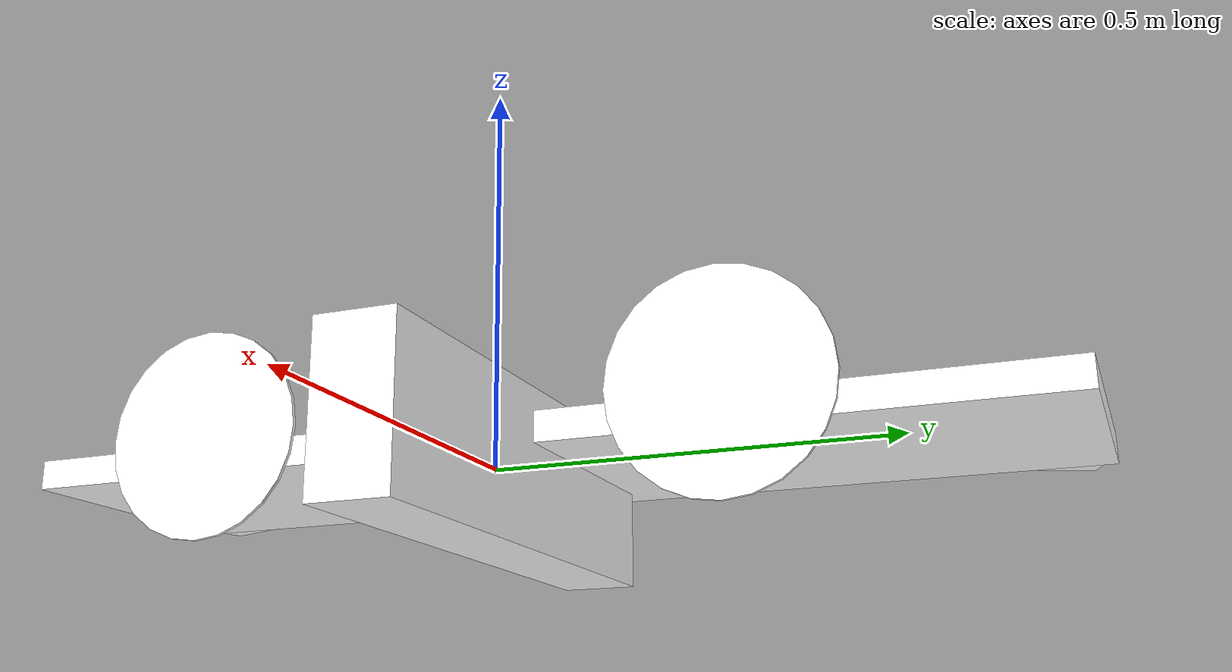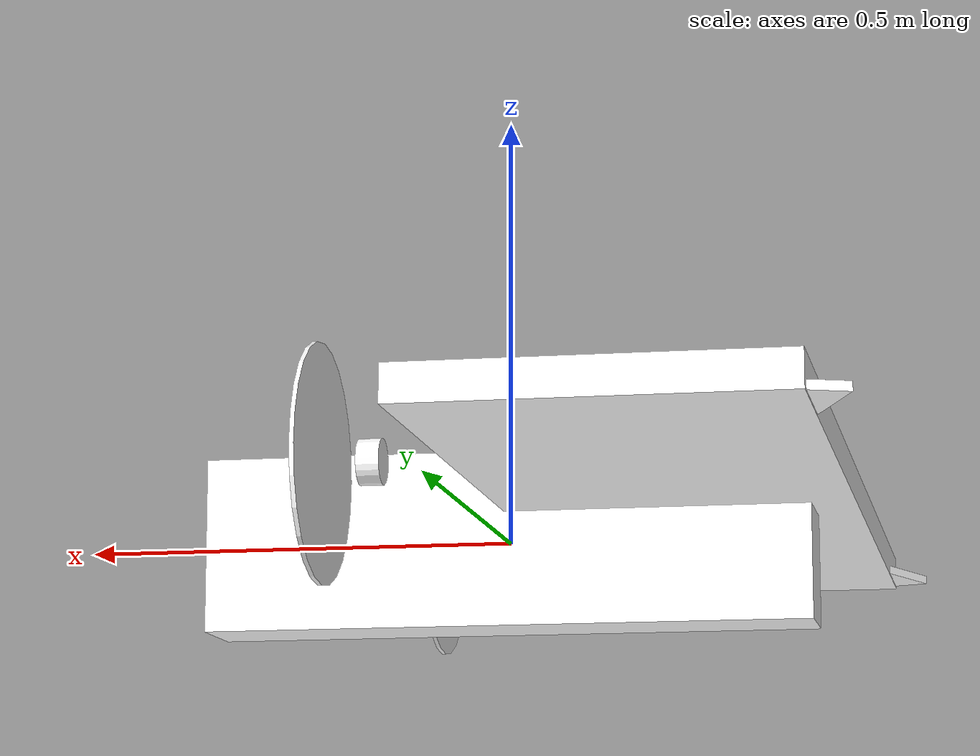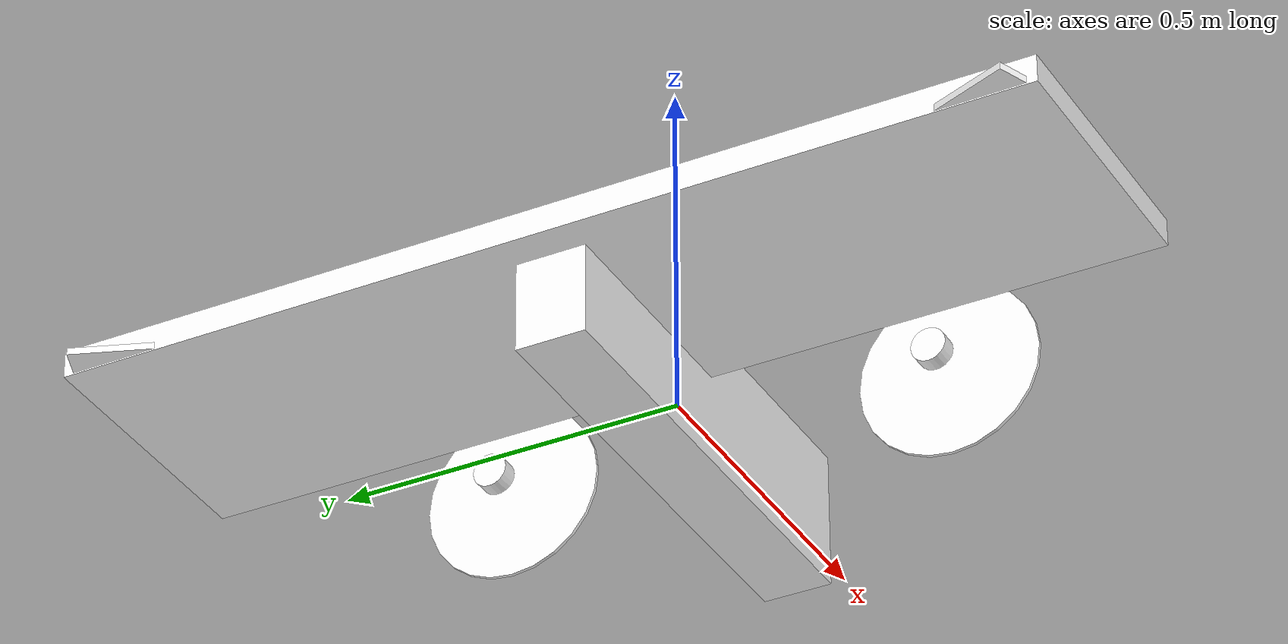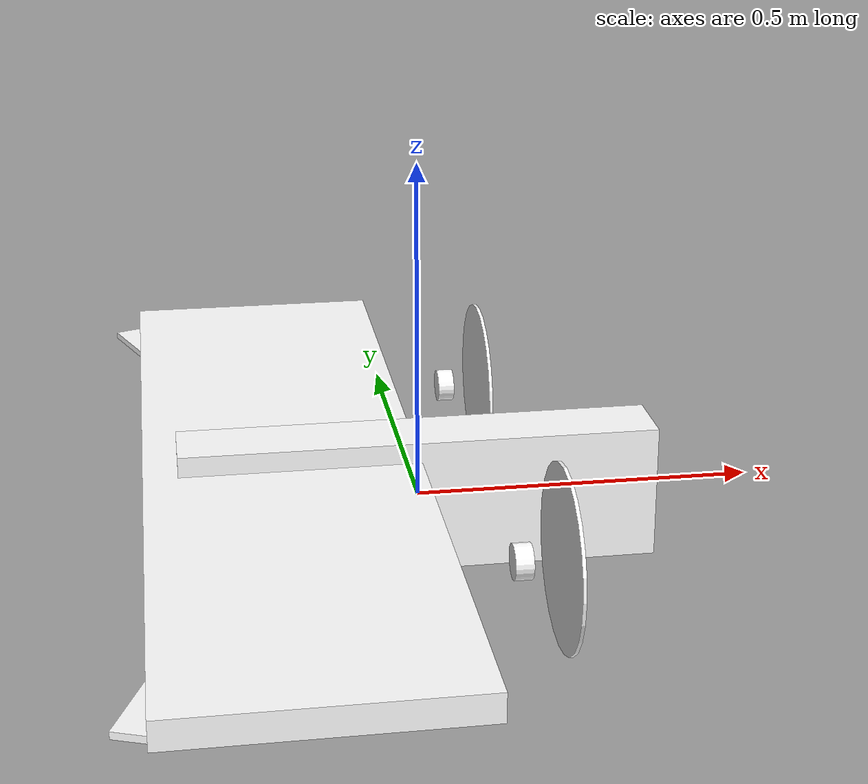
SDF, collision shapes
<sdf version='1.7'>
  <model name='skycat_tvbs'>
    <static>0</static>
    <self_collide>0</self_collide>

    <link name='base_link'>
      <inertial>
        <pose>0 0 0 0 0 0</pose>
        <mass>2.6</mass>
        <inertia>
          <ixx>0.010833333</ixx>
          <ixy>0</ixy>
          <ixz>0</ixz>
          <iyy>0.114833333</iyy>
          <iyz>0</iyz>
          <izz>0.108333333</izz>
        </inertia>
      </inertial>
      <collision name='fuselage_collision'>
        <pose>0 0 0 0 0 0</pose>
        <geometry>
          <box>
            <size>0.7 0.1 0.2</size>
          </box>
        </geometry>
      </collision>
      <collision name='wing_collision'>
        <pose>-0.20 0 0.05 0 0 0</pose>
        <geometry>
          <box>
            <size>0.4 1.40 0.04</size>
          </box>
        </geometry>
      </collision>
      <visual name='skycat_base'>
        <geometry>
          <mesh>
            <scale>1 1 1</scale>
            <uri>model://skycat_tvbs/meshes/skycat_base.dae</uri>
          </mesh>
        </geometry>
        <material>
          <ambient>1 1 1</ambient>
          <diffuse>1 1 1</diffuse>
          <specular>0.5 0.5 0.5</specular>
          <pbr>
            <metal>
              <albedo_map>model://skycat_tvbs/materials/textures/skycat.png</albedo_map>
              <roughness>0.5</roughness>
              <metalness>0.5</metalness>
            </metal>
          </pbr>
        </material>
      </visual>

      <!-- save for debugging use -->

    </link>

    <link name="elevon_left_link">
      <inertial>
        <pose>-0.30 0.37 0.037 0 0 0.366519</pose>
        <mass>0.1</mass>
        <inertia>
          <ixx>0.003713333</ixx>
          <ixy>0</ixy>
          <iyy>0.000104167</iyy>
          <ixz>0</ixz>
          <iyz>0</iyz>
          <izz>0.003650833</izz>
        </inertia>
      </inertial>
      <collision name="collision">
        <pose>-0.30 0.37 0.037 0 0 0.366519</pose>
        <geometry>
          <box>
            <size>0.05 0.66 0.01</size>
          </box>
        </geometry>
      </collision>
      <visual name='visual'>
        <geometry>
          <mesh>
            <scale>1 1 1</scale>
            <uri>model://skycat_tvbs/meshes/skycat_elevon_left.dae</uri>
          </mesh>
        </geometry>
        <material>
          <ambient>1 1 1</ambient>
          <diffuse>1 1 1</diffuse>
          <specular>0.5 0.5 0.5</specular>
          <pbr>
            <metal>
              <albedo_map>model://skycat_tvbs/materials/textures/skycat.png</albedo_map>
              <roughness>0.5</roughness>
              <metalness>0.5</metalness>
            </metal>
          </pbr>
        </material>
      </visual>
    </link>
    <joint name="elevon_left_joint" type="revolute">
      <pose relative_to='base_link'>-0.263 0.327 0.037 0 0 0.366519</pose>
      <parent>base_link</parent>
      <child>elevon_left_link</child>
      <axis>
        <xyz>0 1 0</xyz>
        <limit>
          <lower>-0.523599</lower>
          <upper>0.523599</upper>
        </limit>
        <dynamics>
          <damping>0.02</damping>
        </dynamics>
      </axis>
    </joint>

    <link name="elevon_right_link">
      <inertial>
        <pose>-0.30 -0.37 0.037 0 0 -0.366519</pose>
        <mass>0.1</mass>
        <inertia>
          <ixx>0.003713333</ixx>
          <ixy>0</ixy>
          <iyy>0.000104167</iyy>
          <ixz>0</ixz>
          <iyz>0</iyz>
          <izz>0.003650833</izz>
        </inertia>
      </inertial>
      <collision name="collision">
        <pose>-0.30 -0.37 0.037 0 0 -0.366519</pose>
        <geometry>
          <box>
            <size>0.05 0.66 0.01</size>
          </box>
        </geometry>
      </collision>
      <visual name='visual'>
        <geometry>
          <mesh>
            <scale>1 1 1</scale>
            <uri>model://skycat_tvbs/meshes/skycat_elevon_right.dae</uri>
          </mesh>
        </geometry>
        <material>
          <ambient>1 1 1</ambient>
          <diffuse>1 1 1</diffuse>
          <specular>0.5 0.5 0.5</specular>
          <pbr>
            <metal>
              <albedo_map>model://skycat_tvbs/materials/textures/skycat.png</albedo_map>
              <roughness>0.5</roughness>
              <metalness>0.5</metalness>
            </metal>
          </pbr>
        </material>
      </visual>
    </link>
    <joint name="elevon_right_joint" type="revolute">
      <pose relative_to='base_link'>-0.263 -0.327 0.037 0 0 -0.366519</pose>
      <parent>base_link</parent>
      <child>elevon_right_link</child>
      <axis>
        <xyz>0 1 0</xyz>
        <limit>
          <lower>-0.523599</lower>
          <upper>0.523599</upper>
        </limit>
        <dynamics>
          <damping>0.02</damping>
        </dynamics>
      </axis>
    </joint>

    <link name="tilt_left_link">
      <inertial>
        <pose>0.091 0.327 0.042 0 1.570796 0</pose>
        <mass>0.06</mass>
        <inertia>
          <ixx>0.0000125</ixx>
          <ixy>0</ixy>
          <ixz>0</ixz>
          <iyy>0.0000125</iyy>
          <iyz>0</iyz>
          <izz>0.00001875</izz>
        </inertia>
      </inertial>
      <collision name='collision'>
        <pose>0.091 0.327 0.042 0 1.570796 0</pose>
        <geometry>
          <cylinder>
            <radius>0.025</radius>
            <length>0.025</length>
          </cylinder>
        </geometry>
      </collision>
      <visual name='visual'>
        <geometry>
          <mesh>
            <scale>1 1 1</scale>
            <uri>model://skycat_tvbs/meshes/skycat_tilt_left.dae</uri>
          </mesh>
        </geometry>
        <material>
          <ambient>1 1 1</ambient>
          <diffuse>1 1 1</diffuse>
          <specular>0.3 0.3 0.3</specular>
          <pbr>
            <metal>
              <albedo_map>model://skycat_tvbs/materials/textures/skycat.png</albedo_map>
              <roughness>0.5</roughness>
              <metalness>0.9</metalness>
            </metal>
          </pbr>
        </material>
      </visual>
    </link>
    <joint name="tilt_left_joint" type="revolute">
      <pose relative_to='base_link'>0.091 0.327 0.042 0 0 0</pose>
      <parent>base_link</parent>
      <child>tilt_left_link</child>
      <axis>
        <xyz>0 1 0</xyz>
        <limit>
          <lower>-1.047198</lower>
          <upper>1.047198</upper>
        </limit>
        <dynamics>
          <damping>0.02</damping>
        </dynamics>
      </axis>
    </joint>

    <link name="tilt_right_link">
      <inertial>
        <pose>0.091 -0.327 0.042 0 1.570796 0</pose>
        <mass>0.06</mass>
        <inertia>
          <ixx>0.0000125</ixx>
          <ixy>0</ixy>
          <ixz>0</ixz>
          <iyy>0.0000125</iyy>
          <iyz>0</iyz>
          <izz>0.00001875</izz>
        </inertia>
      </inertial>
      <collision name='collision'>
        <pose>0.091 -0.327 0.042 0 1.570796 0</pose>
        <geometry>
          <cylinder>
            <radius>0.025</radius>
            <length>0.025</length>
          </cylinder>
        </geometry>
      </collision>
      <visual name='visual'>
        <geometry>
          <mesh>
            <scale>1 1 1</scale>
            <uri>model://skycat_tvbs/meshes/skycat_tilt_right.dae</uri>
          </mesh>
        </geometry>
        <material>
          <ambient>1 1 1</ambient>
          <diffuse>1 1 1</diffuse>
          <specular>0.3 0.3 0.3</specular>
          <pbr>
            <metal>
              <albedo_map>model://skycat_tvbs/materials/textures/skycat.png</albedo_map>
              <roughness>0.5</roughness>
              <metalness>0.9</metalness>
            </metal>
          </pbr>
        </material>
      </visual>
    </link>
    <joint name="tilt_right_joint" type="revolute">
      <pose relative_to='base_link'>0.091 -0.327 0.042 0 0 0</pose>
      <parent>base_link</parent>
      <child>tilt_right_link</child>
      <axis>
        <xyz>0 1 0</xyz>
        <limit>
          <lower>-1.047198</lower>
          <upper>1.047198</upper>
        </limit>
        <dynamics>
          <damping>0.02</damping>
        </dynamics>
      </axis>
    </joint>

    <link name="motor_left_link">
      <pose relative_to='motor_left_joint'>0 0 0.03 0 0 0</pose>
      <inertial>
        <pose>0 0 0 0 0 0</pose>
        <mass>0.025</mass>
        <inertia>
          <ixx>9.75e-06</ixx>
          <ixy>0</ixy>
          <ixz>0</ixz>
          <iyy>0.000166704</iyy>
          <iyz>0</iyz>
          <izz>0.000167604</izz>
        </inertia>
      </inertial>
      <collision name='collision'>
        <pose>0 0 0.025 0 0 0</pose>
        <geometry>
          <cylinder>
            <length>0.005</length>
            <radius>0.13</radius>
          </cylinder>
        </geometry>
      </collision>
      <visual name='prop_visual'>
        <pose>0 0 0.025 0 0 0</pose>
        <geometry>
          <mesh>
            <scale>1 1 1</scale>
            <uri>model://skycat_tvbs/meshes/iris_prop_cw.dae</uri>
          </mesh>
        </geometry>
        <material>
          <diffuse>1.0 1.0 1.0</diffuse>
          <specular>1.0 1.0 1.0</specular>
          <pbr>
            <metal>
              <albedo_map>model://skycat_tvbs/materials/textures/metal_graphite/metal_graphite_basecolor.jpg</albedo_map>
              <metalness_map>model://skycat_tvbs/materials/textures/metal_graphite/metal_graphite_metallic.jpg</metalness_map>
              <normal_map>model://skycat_tvbs/materials/textures/metal_graphite/metal_graphite_normal.jpg</normal_map>
              <roughness_map>model://skycat_tvbs/materials/textures/metal_graphite/metal_graphite_roughness.jpg</roughness_map>
              <roughness>1.0</roughness>
              <metalness>1.0</metalness>
            </metal>
          </pbr>
        </material>
      </visual>
    </link>
    <joint name="motor_left_joint" type="revolute">
      <pose relative_to='tilt_left_joint'>0 0 0 0 1.570796 0</pose>
      <parent>tilt_left_link</parent>
      <child>motor_left_link</child>
      <axis>
        <xyz>0 0 1</xyz>
        <limit>
          <lower>-1e16</lower>
          <upper>1e16</upper>
        </limit>
        <dynamics>
          <damping>0.002</damping>
        </dynamics>
        <use_parent_model_frame>1</use_parent_model_frame>
      </axis>
    </joint>

    <link name="motor_right_link">
      <pose relative_to='motor_right_joint'>0 0 0.03 0 0 0</pose>
      <inertial>
        <pose>0 0 0 0 0 0</pose>
        <mass>0.025</mass>
        <inertia>
          <ixx>9.75e-06</ixx>
          <ixy>0</ixy>
          <ixz>0</ixz>
          <iyy>0.000166704</iyy>
          <iyz>0</iyz>
          <izz>0.000167604</izz>
        </inertia>
      </inertial>
      <collision name='collision'>
        <pose>0 0 0.025 0 0 0</pose>
        <geometry>
          <cylinder>
            <length>0.005</length>
            <radius>0.13</radius>
          </cylinder>
        </geometry>
      </collision>
      <visual name='prop_visual'>
        <pose>0 0 0.025 0 0 0</pose>
        <geometry>
          <mesh>
            <scale>1 1 1</scale>
            <uri>model://skycat_tvbs/meshes/iris_prop_ccw.dae</uri>
          </mesh>
        </geometry>
        <material>
          <diffuse>1.0 1.0 1.0</diffuse>
          <specular>1.0 1.0 1.0</specular>
          <pbr>
            <metal>
              <albedo_map>model://skycat_tvbs/materials/textures/metal_graphite/metal_graphite_basecolor.jpg</albedo_map>
              <metalness_map>model://skycat_tvbs/materials/textures/metal_graphite/metal_graphite_metallic.jpg</metalness_map>
              <normal_map>model://skycat_tvbs/materials/textures/metal_graphite/metal_graphite_normal.jpg</normal_map>
              <roughness_map>model://skycat_tvbs/materials/textures/metal_graphite/metal_graphite_roughness.jpg</roughness_map>
              <roughness>1.0</roughness>
              <metalness>1.0</metalness>
            </metal>
          </pbr>
        </material>
      </visual>
    </link>
    <joint name="motor_right_joint" type="revolute">
      <pose relative_to='tilt_right_joint'>0 0 0 0 1.570796 0</pose>
      <parent>tilt_right_link</parent>
      <child>motor_right_link</child>
      <axis>
        <xyz>0 0 1</xyz>
        <limit>
          <lower>-1e16</lower>
          <upper>1e16</upper>
        </limit>
        <dynamics>
          <damping>0.002</damping>
        </dynamics>
      </axis>
    </joint>

    <!-- sensors -->
    <link name='imu_link'>
      <inertial>
        <pose>0 0 0 0 0 0</pose>
        <mass>0.15</mass>
        <inertia>
          <ixx>0.00002</ixx>
          <ixy>0</ixy>
          <ixz>0</ixz>
          <iyy>0.00002</iyy>
          <iyz>0</iyz>
          <izz>0.00002</izz>
        </inertia>
      </inertial>
      <sensor name="imu_sensor" type="imu">
        <pose>0 0 0 3.141593 0 0</pose>
        <always_on>1</always_on>
        <update_rate>1000.0</update_rate>
      </sensor>
    </link>
    <joint name='imu_joint' type='revolute'>
      <child>imu_link</child>
      <parent>base_link</parent>
      <axis>
        <xyz>0 0 1</xyz>
        <limit>
          <lower>0</lower>
          <upper>0</upper>
          <effort>0</effort>
          <velocity>0</velocity>
        </limit>
        <dynamics>
          <damping>1.0</damping>
        </dynamics>
        <use_parent_model_frame>1</use_parent_model_frame>
      </axis>
    </joint>

    <!-- plugins -->
    <plugin filename="libgz-sim-joint-state-publisher-system.so"
      name="gz::sim::systems::JointStatePublisher">
    </plugin>

    <!-- prop_left (cc) lift-drag -->
    <plugin filename="libgz-sim-lift-drag-system.so"
        name="gz::sim::systems::LiftDrag">
      <a0>0.3</a0>
      <alpha_stall>1.4</alpha_stall>
      <cla>4.2500</cla>
      <cda>0.10</cda>
      <cma>0.00</cma>
      <cla_stall>-0.025</cla_stall>
      <cda_stall>0.0</cda_stall>
      <cma_stall>0.0</cma_stall>
      <area>0.002</area>
      <air_density>1.2041</air_density>
      <cp>0.084 0 0</cp>
      <forward>0 -1 0</forward>
      <upward>0 0 1</upward>
      <link_name>motor_left_link</link_name>
      <visualize>1</visualize>
      <visualize_rate>60</visualize_rate>
      <visualize_label>Blade1</visualize_label>
      <visualize_forces>
        <visualize>1</visualize>
        <update_rate>60</update_rate>
        <label>Blade1</label>
        <topic>/model/skycat_tvbs/link/motor_left_link/forces/lift_drag</topic>
      </visualize_forces>
    </plugin>
    <plugin filename="libgz-sim-lift-drag-system.so"
        name="gz::sim::systems::LiftDrag">
      <a0>0.3</a0>
      <alpha_stall>1.4</alpha_stall>
      <cla>4.2500</cla>
      <cda>0.10</cda>
      <cma>0.00</cma>
      <cla_stall>-0.025</cla_stall>
      <cda_stall>0.0</cda_stall>
      <cma_stall>0.0</cma_stall>
      <area>0.002</area>
      <air_density>1.2041</air_density>
      <cp>-0.084 0 0</cp>
      <forward>0 1 0</forward>
      <upward>0 0 1</upward>
      <link_name>motor_left_link</link_name>
      <visualize_forces>
        <visualize>1</visualize>
        <update_rate>60</update_rate>
        <label>Blade2</label>
        <topic>/model/skycat_tvbs/link/motor_left_link/forces/lift_drag</topic>
      </visualize_forces>
    </plugin>

    <!-- prop_right (ccw) lift-drag -->
    <plugin filename="libgz-sim-lift-drag-system.so"
        name="gz::sim::systems::LiftDrag">
      <a0>0.3</a0>
      <alpha_stall>1.4</alpha_stall>
      <cla>4.2500</cla>
      <cda>0.10</cda>
      <cma>0.00</cma>
      <cla_stall>-0.025</cla_stall>
      <cda_stall>0.0</cda_stall>
      <cma_stall>0.0</cma_stall>
      <area>0.002</area>
      <air_density>1.2041</air_density>
      <cp>0.084 0 0</cp>
      <forward>0 1 0</forward>
      <upward>0 0 1</upward>
      <link_name>motor_right_link</link_name>
      <visualize_forces>
        <visualize>1</visualize>
        <update_rate>60</update_rate>
        <label>Blade1</label>
        <topic>/model/skycat_tvbs/link/motor_right_link/forces/lift_drag</topic>
      </visualize_forces>
    </plugin>
    <plugin filename="libgz-sim-lift-drag-system.so"
        name="gz::sim::systems::LiftDrag">
      <a0>0.3</a0>
      <alpha_stall>1.4</alpha_stall>
      <cla>4.2500</cla>
      <cda>0.10</cda>
      <cma>0.00</cma>
      <cla_stall>-0.025</cla_stall>
      <cda_stall>0.0</cda_stall>
      <cma_stall>0.0</cma_stall>
      <area>0.002</area>
      <air_density>1.2041</air_density>
      <cp>-0.084 0 0</cp>
      <forward>0 -1 0</forward>
      <upward>0 0 1</upward>
      <link_name>motor_right_link</link_name>
      <visualize_forces>
        <visualize>1</visualize>
        <update_rate>60</update_rate>
        <label>Blade2</label>
        <topic>/model/skycat_tvbs/link/motor_right_link/forces/lift_drag</topic>
      </visualize_forces>
    </plugin>

    <!-- wing lift-drag -->
    <plugin filename="libgz-sim-lift-drag-system.so"
        name="gz::sim::systems::LiftDrag">
      <a0>0.13</a0>
      <cla>3.7</cla>
      <cda>0.06417112299</cda>
      <cma>-1.8</cma>
      <alpha_stall>0.3391428111</alpha_stall>
      <cla_stall>-3.85</cla_stall>
      <cda_stall>-0.9233984055</cda_stall>
      <cma_stall>0</cma_stall>
      <cp>0.01 0 0.042</cp>
      <area>0.60</area>
      <air_density>1.2041</air_density>
      <forward>1 0 0</forward>
      <upward>0 0 1</upward>
      <link_name>base_link</link_name>
      <visualize_forces>
        <visualize>1</visualize>
        <update_rate>60</update_rate>
        <label>Wing</label>
        <topic>/model/skycat_tvbs/link/base_link/forces/lift_drag</topic>
      </visualize_forces>
    </plugin>
    <!-- left_elevon lift-drag -->
    <plugin filename="libgz-sim-lift-drag-system.so"
        name="gz::sim::systems::LiftDrag">
      <a0>0.15</a0>
      <cla>6.8</cla>
      <cda>0.06417112299</cda>
      <cma>-1.8</cma>
      <alpha_stall>0.6391428111</alpha_stall>
      <cla_stall>-3.85</cla_stall>
      <cda_stall>-0.9233984055</cda_stall>
      <cma_stall>0</cma_stall>
      <cp>-0.27 0.322 -0.042</cp>
      <area>0.033</area>
      <air_density>1.2041</air_density>
      <forward>1 0 0</forward>
      <upward>0 0 1</upward>
      <link_name>base_link</link_name>
      <control_joint_name>elevon_left_joint</control_joint_name>
      <control_joint_rad_to_cl>-5.0</control_joint_rad_to_cl>
      <visualize_forces>
        <visualize>1</visualize>
        <update_rate>60</update_rate>
        <label>LeftElevon</label>
        <topic>/model/skycat_tvbs/link/base_link/forces/lift_drag</topic>
      </visualize_forces>
    </plugin>
    <!-- right_elevon lift-drag -->
    <plugin filename="libgz-sim-lift-drag-system.so"
        name="gz::sim::systems::LiftDrag">
      <a0>0.15</a0>
      <cla>6.8</cla>
      <cda>0.06417112299</cda>
      <cma>-1.8</cma>
      <alpha_stall>0.6391428111</alpha_stall>
      <cla_stall>-3.85</cla_stall>
      <cda_stall>-0.9233984055</cda_stall>
      <cma_stall>0</cma_stall>
      <cp>-0.27 -0.322 -0.042</cp>
      <area>0.033</area>
      <air_density>1.2041</air_density>
      <forward>1 0 0</forward>
      <upward>0 0 1</upward>
      <link_name>base_link</link_name>
      <control_joint_name>elevon_right_joint</control_joint_name>
      <control_joint_rad_to_cl>-5.0</control_joint_rad_to_cl>
      <visualize_forces>
        <visualize>1</visualize>
        <update_rate>60</update_rate>
        <label>RightElevon</label>
        <topic>/model/skycat_tvbs/link/base_link/forces/lift_drag</topic>
      </visualize_forces>
    </plugin>
    <!-- left_winglet lift-drag -->
    <plugin filename="libgz-sim-lift-drag-system.so"
        name="gz::sim::systems::LiftDrag">
      <a0>0.0</a0>
      <cla>4.752798721</cla>
      <cda>0.6417112299</cda>
      <cma>-1.8</cma>
      <alpha_stall>0.3391428111</alpha_stall>
      <cla_stall>-3.85</cla_stall>
      <cda_stall>-0.9233984055</cda_stall>
      <cma_stall>0</cma_stall>
      <cp>-0.4 0.735 0.08</cp>
      <area>0.12</area>
      <air_density>1.2041</air_density>
      <forward>1 0 0</forward>
      <upward>0 1 0</upward>
      <link_name>base_link</link_name>
      <visualize_forces>
        <visualize>1</visualize>
        <update_rate>60</update_rate>
        <label>LeftWinglet</label>
        <topic>/model/skycat_tvbs/link/base_link/forces/lift_drag</topic>
      </visualize_forces>
    </plugin>
    <!-- right_winglet lift-drag -->
    <plugin filename="libgz-sim-lift-drag-system.so"
        name="gz::sim::systems::LiftDrag">
      <a0>0.0</a0>
      <cla>4.752798721</cla>
      <cda>0.6417112299</cda>
      <cma>-1.8</cma>
      <alpha_stall>0.3391428111</alpha_stall>
      <cla_stall>-3.85</cla_stall>
      <cda_stall>-0.9233984055</cda_stall>
      <cma_stall>0</cma_stall>
      <cp>-0.4 -0.735 0.08</cp>
      <area>0.12</area>
      <air_density>1.2041</air_density>
      <forward>1 0 0</forward>
      <upward>0 -1 0</upward>
      <link_name>base_link</link_name>
      <visualize_forces>
        <visualize>1</visualize>
        <update_rate>60</update_rate>
        <label>RightWinglet</label>
        <topic>/model/skycat_tvbs/link/base_link/forces/lift_drag</topic>
      </visualize_forces>
    </plugin>

    <plugin filename="libgz-sim-apply-joint-force-system.so"
      name="gz::sim::systems::ApplyJointForce">
      <joint_name>elevon_left_joint</joint_name>
    </plugin>
    <plugin filename="libgz-sim-apply-joint-force-system.so"
      name="gz::sim::systems::ApplyJointForce">
      <joint_name>elevon_right_joint</joint_name>
    </plugin>
    <plugin filename="libgz-sim-apply-joint-force-system.so"
      name="gz::sim::systems::ApplyJointForce">
      <joint_name>tilt_left_joint</joint_name>
    </plugin>
    <plugin filename="libgz-sim-apply-joint-force-system.so"
      name="gz::sim::systems::ApplyJointForce">
      <joint_name>tilt_right_joint</joint_name>
    </plugin>
    <plugin filename="libgz-sim-apply-joint-force-system.so"
      name="gz::sim::systems::ApplyJointForce">
      <joint_name>motor_left_joint</joint_name>
    </plugin>
    <plugin filename="libgz-sim-apply-joint-force-system.so"
      name="gz::sim::systems::ApplyJointForce">
      <joint_name>motor_right_joint</joint_name>
    </plugin>

    <plugin name="ArduPilotPlugin" filename="libArduPilotPlugin.so">
      <!-- Port settings -->
      <fdm_addr>127.0.0.1</fdm_addr>
      <fdm_port_in>9002</fdm_port_in>
      <connectionTimeoutMaxCount>5</connectionTimeoutMaxCount>
      <lock_step>1</lock_step>

      <modelXYZToAirplaneXForwardZDown>0 0 0 3.141593 0 0</modelXYZToAirplaneXForwardZDown>
      <gazeboXYZToNED>0 0 0 3.141593 0 0</gazeboXYZToNED>

      <!-- Sensors -->
      <imuName>imu_sensor</imuName>

      <control channel="0">
        <jointName>elevon_left_joint</jointName>
        <useForce>1</useForce>
        <multiplier>1.047</multiplier>
        <offset>-0.5</offset>
        <servo_min>1000</servo_min>
        <servo_max>2000</servo_max>
        <type>POSITION</type>
        <p_gain>5.0</p_gain>
        <i_gain>0</i_gain>
        <d_gain>0</d_gain>
        <i_max>-1</i_max>
        <i_min>0</i_min>
        <cmd_max>2.5</cmd_max>
        <cmd_min>-2.5</cmd_min>
      </control>

      <!--
          SERVO2_FUNCTION   78 (Elevon Right)
          SERVO2_MAX        2000
          SERVO2_MIN        1000
          SERVO2_REVERSED   0
          SERVO2_TRIM       1500
       -->
      <control channel="1">
        <jointName>elevon_right_joint</jointName>
        <useForce>1</useForce>
        <multiplier>1.047</multiplier>
        <offset>-0.5</offset>
        <servo_min>1000</servo_min>
        <servo_max>2000</servo_max>
        <type>POSITION</type>
        <p_gain>5.0</p_gain>
        <i_gain>0</i_gain>
        <d_gain>0</d_gain>
        <i_max>-1</i_max>
        <i_min>0</i_min>
        <cmd_max>2.5</cmd_max>
        <cmd_min>-2.5</cmd_min>
      </control>

      <control channel="2">
        <jointName>tilt_left_joint</jointName>
        <useForce>1</useForce>
        <multiplier>2.094395</multiplier>
        <offset>-0.5</offset>
        <servo_min>2000</servo_min>
        <servo_max>1000</servo_max>
        <type>POSITION</type>
        <p_gain>10.0</p_gain>
        <i_gain>0</i_gain>
        <d_gain>0</d_gain>
        <i_max>-1</i_max>
        <i_min>0</i_min>
        <cmd_max>2.5</cmd_max>
        <cmd_min>-2.5</cmd_min>
      </control>

      <control channel="3">
        <jointName>tilt_right_joint</jointName>
        <useForce>1</useForce>
        <multiplier>-2.094395</multiplier>
        <offset>-0.5</offset>
        <servo_min>1000</servo_min>
        <servo_max>2000</servo_max>
        <type>POSITION</type>
        <p_gain>10.0</p_gain>
        <i_gain>0</i_gain>
        <d_gain>0</d_gain>
        <i_max>-1</i_max>
        <i_min>0</i_min>
        <cmd_max>2.5</cmd_max>
        <cmd_min>-2.5</cmd_min>
      </control>

      <!--
          SERVO5_FUNCTION   73 (Left Motor CW)
          SERVO5_MAX        2000
          SERVO5_MIN        1000
          SERVO5_REVERSED   0
          SERVO5_TRIM       1000
       -->
      <control channel="4">
        <jointName>motor_left_joint</jointName>
        <useForce>1</useForce>
        <multiplier>-1500</multiplier>
        <offset>0</offset>
        <servo_min>1000</servo_min>
        <servo_max>2000</servo_max>
        <type>VELOCITY</type>
        <p_gain>0.20</p_gain>
        <i_gain>0</i_gain>
        <d_gain>0</d_gain>
        <i_max>-1</i_max>
        <i_min>0</i_min>
        <cmd_max>2.5</cmd_max>
        <cmd_min>-2.5</cmd_min>
      </control>

      <!--
          SERVO6_FUNCTION   74 (Right Motor CCW)
          SERVO6_MAX        2000
          SERVO6_MIN        1000
          SERVO6_REVERSED   0
          SERVO6_TRIM       1500
       -->
      <control channel="5">
        <jointName>motor_right_joint</jointName>
        <useForce>1</useForce>
        <multiplier>1500</multiplier>
        <offset>0</offset>
        <servo_min>1000</servo_min>
        <servo_max>2000</servo_max>
        <type>VELOCITY</type>
        <p_gain>0.20</p_gain>
        <i_gain>0</i_gain>
        <d_gain>0</d_gain>
        <i_max>-1</i_max>
        <i_min>0</i_min>
        <cmd_max>2.5</cmd_max>
        <cmd_min>-2.5</cmd_min>
      </control>

    </plugin>

  </model>
</sdf>
